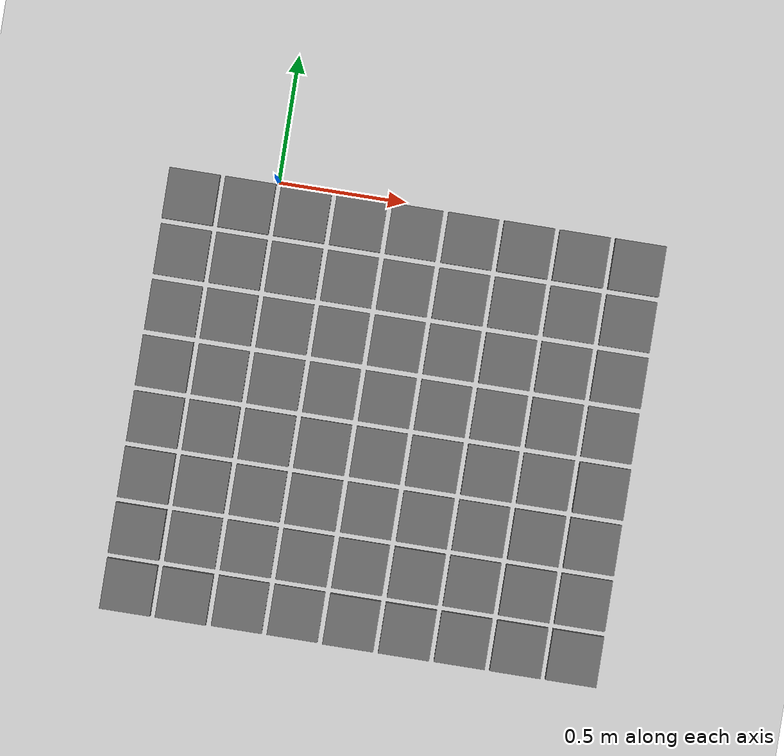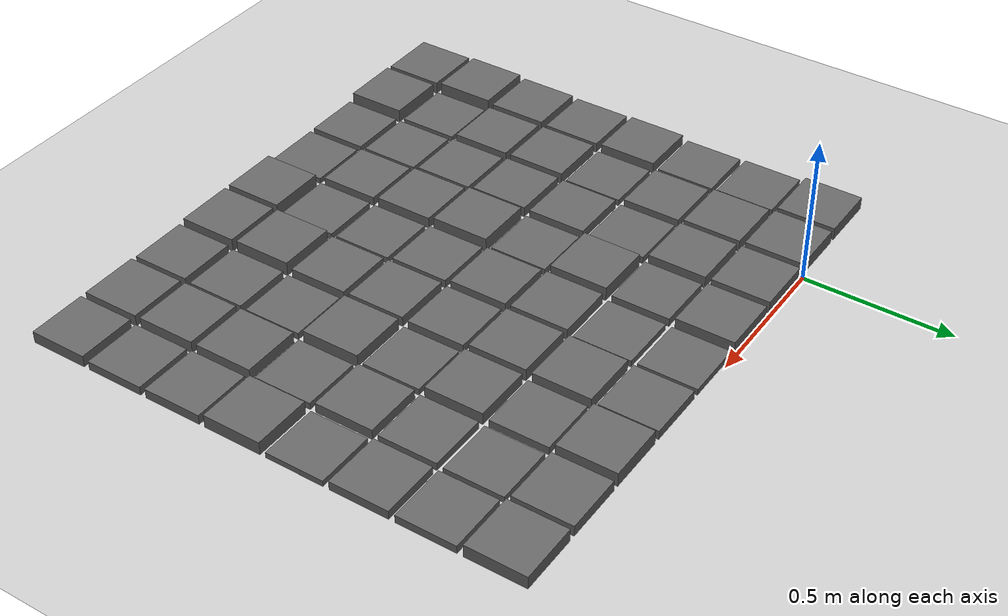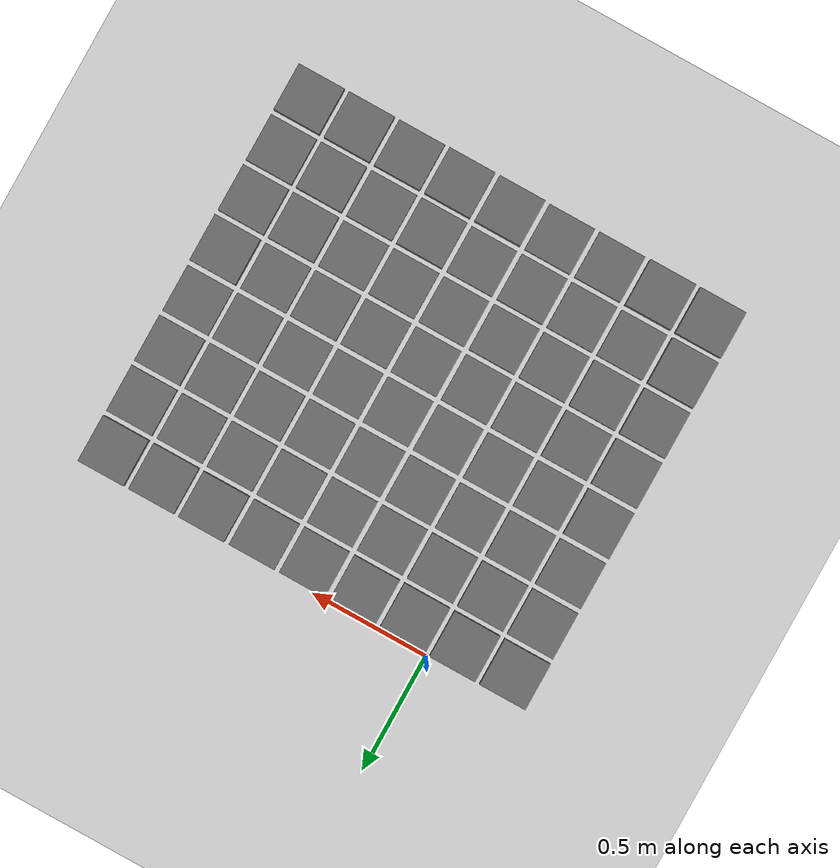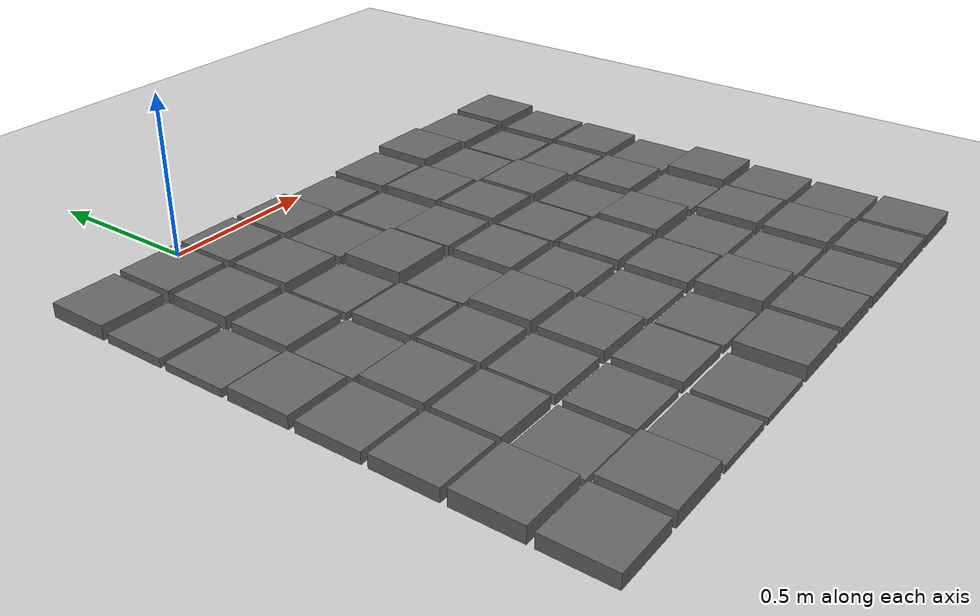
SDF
<sdf version="1.7">
 <world name="default">
  <model name="ground_plane">
   <static>1</static>
   <link name="link">
    <collision name="collision">
     <geometry><plane><normal>0 0 1</normal><size>100 100</size></plane></geometry>
     <surface>
      <contact><collide_bitmask>65535</collide_bitmask></contact>
      <friction><ode><mu>100</mu><mu2>50</mu2></ode></friction>
     </surface>
    </collision>
    <visual name="visual">
     <cast_shadows>0</cast_shadows>
     <geometry><plane><normal>0 0 1</normal><size>100 100</size></plane></geometry>
     <material>
      <script><uri>file://media/materials/scripts/gazebo.material</uri><name>Gazebo/Grey</name></script>
     </material>
    </visual>
   </link>
  </model>
  <model name="terrain_6_0">
   <static>1</static>
   <link name="link">
    <collision name="collision">
     <geometry><box><size>0.2 0.2 0.043116</size></box></geometry>
     <surface><friction><ode><mu>100</mu><mu2>100</mu2></ode></friction></surface>
    </collision>
    <visual name="visual">
     <geometry><box><size>0.2 0.2 0.043116</size></box></geometry>
     <material><ambient>0.4 0.4 0.4 1</ambient></material>
    </visual>
   </link>
   <pose>-0.33 -1.65 0.021558 0 -0 0</pose>
  </model>
  <model name="terrain_6_1">
   <static>1</static>
   <link name="link">
    <collision name="collision">
     <geometry><box><size>0.2 0.2 0.049103</size></box></geometry>
     <surface><friction><ode><mu>100</mu><mu2>100</mu2></ode></friction></surface>
    </collision>
    <visual name="visual">
     <geometry><box><size>0.2 0.2 0.049103</size></box></geometry>
     <material><ambient>0.4 0.4 0.4 1</ambient></material>
    </visual>
   </link>
   <pose>-0.33 -1.43 0.024552 0 -0 0</pose>
  </model>
  <model name="terrain_6_2">
   <static>1</static>
   <link name="link">
    <collision name="collision">
     <geometry><box><size>0.2 0.2 0.040227</size></box></geometry>
     <surface><friction><ode><mu>100</mu><mu2>100</mu2></ode></friction></surface>
    </collision>
    <visual name="visual">
     <geometry><box><size>0.2 0.2 0.040227</size></box></geometry>
     <material><ambient>0.4 0.4 0.4 1</ambient></material>
    </visual>
   </link>
   <pose>-0.33 -1.21 0.020113 0 -0 0</pose>
  </model>
  <model name="terrain_6_3">
   <static>1</static>
   <link name="link">
    <collision name="collision">
     <geometry><box><size>0.2 0.2 0.035061</size></box></geometry>
     <surface><friction><ode><mu>100</mu><mu2>100</mu2></ode></friction></surface>
    </collision>
    <visual name="visual">
     <geometry><box><size>0.2 0.2 0.035061</size></box></geometry>
     <material><ambient>0.4 0.4 0.4 1</ambient></material>
    </visual>
   </link>
   <pose>-0.33 -0.99 0.01753 0 -0 0</pose>
  </model>
  <model name="terrain_6_4">
   <static>1</static>
   <link name="link">
    <collision name="collision">
     <geometry><box><size>0.2 0.2 0.039195</size></box></geometry>
     <surface><friction><ode><mu>100</mu><mu2>100</mu2></ode></friction></surface>
    </collision>
    <visual name="visual">
     <geometry><box><size>0.2 0.2 0.039195</size></box></geometry>
     <material><ambient>0.4 0.4 0.4 1</ambient></material>
    </visual>
   </link>
   <pose>-0.33 -0.77 0.019598 0 -0 0</pose>
  </model>
  <model name="terrain_6_5">
   <static>1</static>
   <link name="link">
    <collision name="collision">
     <geometry><box><size>0.2 0.2 0.024271</size></box></geometry>
     <surface><friction><ode><mu>100</mu><mu2>100</mu2></ode></friction></surface>
    </collision>
    <visual name="visual">
     <geometry><box><size>0.2 0.2 0.024271</size></box></geometry>
     <material><ambient>0.4 0.4 0.4 1</ambient></material>
    </visual>
   </link>
   <pose>-0.33 -0.55 0.012135 0 -0 0</pose>
  </model>
  <model name="terrain_6_6">
   <static>1</static>
   <link name="link">
    <collision name="collision">
     <geometry><box><size>0.2 0.2 0.027412</size></box></geometry>
     <surface><friction><ode><mu>100</mu><mu2>100</mu2></ode></friction></surface>
    </collision>
    <visual name="visual">
     <geometry><box><size>0.2 0.2 0.027412</size></box></geometry>
     <material><ambient>0.4 0.4 0.4 1</ambient></material>
    </visual>
   </link>
   <pose>-0.33 -0.33 0.013706 0 -0 0</pose>
  </model>
  <model name="terrain_6_7">
   <static>1</static>
   <link name="link">
    <collision name="collision">
     <geometry><box><size>0.2 0.2 0.044048</size></box></geometry>
     <surface><friction><ode><mu>100</mu><mu2>100</mu2></ode></friction></surface>
    </collision>
    <visual name="visual">
     <geometry><box><size>0.2 0.2 0.044048</size></box></geometry>
     <material><ambient>0.4 0.4 0.4 1</ambient></material>
    </visual>
   </link>
   <pose>-0.33 -0.11 0.022024 0 -0 0</pose>
  </model>
  <model name="terrain_7_0">
   <static>1</static>
   <link name="link">
    <collision name="collision">
     <geometry><box><size>0.2 0.2 0.047293</size></box></geometry>
     <surface><friction><ode><mu>100</mu><mu2>100</mu2></ode></friction></surface>
    </collision>
    <visual name="visual">
     <geometry><box><size>0.2 0.2 0.047293</size></box></geometry>
     <material><ambient>0.4 0.4 0.4 1</ambient></material>
    </visual>
   </link>
   <pose>-0.11 -1.65 0.023646 0 -0 0</pose>
  </model>
  <model name="terrain_7_1">
   <static>1</static>
   <link name="link">
    <collision name="collision">
     <geometry><box><size>0.2 0.2 0.021317</size></box></geometry>
     <surface><friction><ode><mu>100</mu><mu2>100</mu2></ode></friction></surface>
    </collision>
    <visual name="visual">
     <geometry><box><size>0.2 0.2 0.021317</size></box></geometry>
     <material><ambient>0.4 0.4 0.4 1</ambient></material>
    </visual>
   </link>
   <pose>-0.11 -1.43 0.010659 0 -0 0</pose>
  </model>
  <model name="terrain_7_2">
   <static>1</static>
   <link name="link">
    <collision name="collision">
     <geometry><box><size>0.2 0.2 0.03865</size></box></geometry>
     <surface><friction><ode><mu>100</mu><mu2>100</mu2></ode></friction></surface>
    </collision>
    <visual name="visual">
     <geometry><box><size>0.2 0.2 0.03865</size></box></geometry>
     <material><ambient>0.4 0.4 0.4 1</ambient></material>
    </visual>
   </link>
   <pose>-0.11 -1.21 0.019325 0 -0 0</pose>
  </model>
  <model name="terrain_7_3">
   <static>1</static>
   <link name="link">
    <collision name="collision">
     <geometry><box><size>0.2 0.2 0.040271</size></box></geometry>
     <surface><friction><ode><mu>100</mu><mu2>100</mu2></ode></friction></surface>
    </collision>
    <visual name="visual">
     <geometry><box><size>0.2 0.2 0.040271</size></box></geometry>
     <material><ambient>0.4 0.4 0.4 1</ambient></material>
    </visual>
   </link>
   <pose>-0.11 -0.99 0.020135 0 -0 0</pose>
  </model>
  <model name="terrain_7_4">
   <static>1</static>
   <link name="link">
    <collision name="collision">
     <geometry><box><size>0.2 0.2 0.022176</size></box></geometry>
     <surface><friction><ode><mu>100</mu><mu2>100</mu2></ode></friction></surface>
    </collision>
    <visual name="visual">
     <geometry><box><size>0.2 0.2 0.022176</size></box></geometry>
     <material><ambient>0.4 0.4 0.4 1</ambient></material>
    </visual>
   </link>
   <pose>-0.11 -0.77 0.011088 0 -0 0</pose>
  </model>
  <model name="terrain_7_5">
   <static>1</static>
   <link name="link">
    <collision name="collision">
     <geometry><box><size>0.2 0.2 0.03272</size></box></geometry>
     <surface><friction><ode><mu>100</mu><mu2>100</mu2></ode></friction></surface>
    </collision>
    <visual name="visual">
     <geometry><box><size>0.2 0.2 0.03272</size></box></geometry>
     <material><ambient>0.4 0.4 0.4 1</ambient></material>
    </visual>
   </link>
   <pose>-0.11 -0.55 0.01636 0 -0 0</pose>
  </model>
  <model name="terrain_7_6">
   <static>1</static>
   <link name="link">
    <collision name="collision">
     <geometry><box><size>0.2 0.2 0.041433</size></box></geometry>
     <surface><friction><ode><mu>100</mu><mu2>100</mu2></ode></friction></surface>
    </collision>
    <visual name="visual">
     <geometry><box><size>0.2 0.2 0.041433</size></box></geometry>
     <material><ambient>0.4 0.4 0.4 1</ambient></material>
    </visual>
   </link>
   <pose>-0.11 -0.33 0.020717 0 -0 0</pose>
  </model>
  <model name="terrain_7_7">
   <static>1</static>
   <link name="link">
    <collision name="collision">
     <geometry><box><size>0.2 0.2 0.045575</size></box></geometry>
     <surface><friction><ode><mu>100</mu><mu2>100</mu2></ode></friction></surface>
    </collision>
    <visual name="visual">
     <geometry><box><size>0.2 0.2 0.045575</size></box></geometry>
     <material><ambient>0.4 0.4 0.4 1</ambient></material>
    </visual>
   </link>
   <pose>-0.11 -0.11 0.022787 0 -0 0</pose>
  </model>
  <model name="terrain_8_0">
   <static>1</static>
   <link name="link">
    <collision name="collision">
     <geometry><box><size>0.2 0.2 0.023037</size></box></geometry>
     <surface><friction><ode><mu>100</mu><mu2>100</mu2></ode></friction></surface>
    </collision>
    <visual name="visual">
     <geometry><box><size>0.2 0.2 0.023037</size></box></geometry>
     <material><ambient>0.4 0.4 0.4 1</ambient></material>
    </visual>
   </link>
   <pose>0.11 -1.65 0.011519 0 -0 0</pose>
  </model>
  <model name="terrain_8_1">
   <static>1</static>
   <link name="link">
    <collision name="collision">
     <geometry><box><size>0.2 0.2 0.023261</size></box></geometry>
     <surface><friction><ode><mu>100</mu><mu2>100</mu2></ode></friction></surface>
    </collision>
    <visual name="visual">
     <geometry><box><size>0.2 0.2 0.023261</size></box></geometry>
     <material><ambient>0.4 0.4 0.4 1</ambient></material>
    </visual>
   </link>
   <pose>0.11 -1.43 0.01163 0 -0 0</pose>
  </model>
  <model name="terrain_8_2">
   <static>1</static>
   <link name="link">
    <collision name="collision">
     <geometry><box><size>0.2 0.2 0.03083</size></box></geometry>
     <surface><friction><ode><mu>100</mu><mu2>100</mu2></ode></friction></surface>
    </collision>
    <visual name="visual">
     <geometry><box><size>0.2 0.2 0.03083</size></box></geometry>
     <material><ambient>0.4 0.4 0.4 1</ambient></material>
    </visual>
   </link>
   <pose>0.11 -1.21 0.015415 0 -0 0</pose>
  </model>
  <model name="terrain_8_3">
   <static>1</static>
   <link name="link">
    <collision name="collision">
     <geometry><box><size>0.2 0.2 0.036582</size></box></geometry>
     <surface><friction><ode><mu>100</mu><mu2>100</mu2></ode></friction></surface>
    </collision>
    <visual name="visual">
     <geometry><box><size>0.2 0.2 0.036582</size></box></geometry>
     <material><ambient>0.4 0.4 0.4 1</ambient></material>
    </visual>
   </link>
   <pose>0.11 -0.99 0.018291 0 -0 0</pose>
  </model>
  <model name="terrain_8_4">
   <static>1</static>
   <link name="link">
    <collision name="collision">
     <geometry><box><size>0.2 0.2 0.0341</size></box></geometry>
     <surface><friction><ode><mu>100</mu><mu2>100</mu2></ode></friction></surface>
    </collision>
    <visual name="visual">
     <geometry><box><size>0.2 0.2 0.0341</size></box></geometry>
     <material><ambient>0.4 0.4 0.4 1</ambient></material>
    </visual>
   </link>
   <pose>0.11 -0.77 0.01705 0 -0 0</pose>
  </model>
  <model name="terrain_8_5">
   <static>1</static>
   <link name="link">
    <collision name="collision">
     <geometry><box><size>0.2 0.2 0.024437</size></box></geometry>
     <surface><friction><ode><mu>100</mu><mu2>100</mu2></ode></friction></surface>
    </collision>
    <visual name="visual">
     <geometry><box><size>0.2 0.2 0.024437</size></box></geometry>
     <material><ambient>0.4 0.4 0.4 1</ambient></material>
    </visual>
   </link>
   <pose>0.11 -0.55 0.012218 0 -0 0</pose>
  </model>
  <model name="terrain_8_6">
   <static>1</static>
   <link name="link">
    <collision name="collision">
     <geometry><box><size>0.2 0.2 0.042535</size></box></geometry>
     <surface><friction><ode><mu>100</mu><mu2>100</mu2></ode></friction></surface>
    </collision>
    <visual name="visual">
     <geometry><box><size>0.2 0.2 0.042535</size></box></geometry>
     <material><ambient>0.4 0.4 0.4 1</ambient></material>
    </visual>
   </link>
   <pose>0.11 -0.33 0.021267 0 -0 0</pose>
  </model>
  <model name="terrain_8_7">
   <static>1</static>
   <link name="link">
    <collision name="collision">
     <geometry><box><size>0.2 0.2 0.043571</size></box></geometry>
     <surface><friction><ode><mu>100</mu><mu2>100</mu2></ode></friction></surface>
    </collision>
    <visual name="visual">
     <geometry><box><size>0.2 0.2 0.043571</size></box></geometry>
     <material><ambient>0.4 0.4 0.4 1</ambient></material>
    </visual>
   </link>
   <pose>0.11 -0.11 0.021786 0 -0 0</pose>
  </model>
  <model name="terrain_9_0">
   <static>1</static>
   <link name="link">
    <collision name="collision">
     <geometry><box><size>0.2 0.2 0.021099</size></box></geometry>
     <surface><friction><ode><mu>100</mu><mu2>100</mu2></ode></friction></surface>
    </collision>
    <visual name="visual">
     <geometry><box><size>0.2 0.2 0.021099</size></box></geometry>
     <material><ambient>0.4 0.4 0.4 1</ambient></material>
    </visual>
   </link>
   <pose>0.33 -1.65 0.010549 0 -0 0</pose>
  </model>
  <model name="terrain_9_1">
   <static>1</static>
   <link name="link">
    <collision name="collision">
     <geometry><box><size>0.2 0.2 0.031857</size></box></geometry>
     <surface><friction><ode><mu>100</mu><mu2>100</mu2></ode></friction></surface>
    </collision>
    <visual name="visual">
     <geometry><box><size>0.2 0.2 0.031857</size></box></geometry>
     <material><ambient>0.4 0.4 0.4 1</ambient></material>
    </visual>
   </link>
   <pose>0.33 -1.43 0.015929 0 -0 0</pose>
  </model>
  <model name="terrain_9_2">
   <static>1</static>
   <link name="link">
    <collision name="collision">
     <geometry><box><size>0.2 0.2 0.039376</size></box></geometry>
     <surface><friction><ode><mu>100</mu><mu2>100</mu2></ode></friction></surface>
    </collision>
    <visual name="visual">
     <geometry><box><size>0.2 0.2 0.039376</size></box></geometry>
     <material><ambient>0.4 0.4 0.4 1</ambient></material>
    </visual>
   </link>
   <pose>0.33 -1.21 0.019688 0 -0 0</pose>
  </model>
  <model name="terrain_9_3">
   <static>1</static>
   <link name="link">
    <collision name="collision">
     <geometry><box><size>0.2 0.2 0.048824</size></box></geometry>
     <surface><friction><ode><mu>100</mu><mu2>100</mu2></ode></friction></surface>
    </collision>
    <visual name="visual">
     <geometry><box><size>0.2 0.2 0.048824</size></box></geometry>
     <material><ambient>0.4 0.4 0.4 1</ambient></material>
    </visual>
   </link>
   <pose>0.33 -0.99 0.024412 0 -0 0</pose>
  </model>
  <model name="terrain_9_4">
   <static>1</static>
   <link name="link">
    <collision name="collision">
     <geometry><box><size>0.2 0.2 0.024885</size></box></geometry>
     <surface><friction><ode><mu>100</mu><mu2>100</mu2></ode></friction></surface>
    </collision>
    <visual name="visual">
     <geometry><box><size>0.2 0.2 0.024885</size></box></geometry>
     <material><ambient>0.4 0.4 0.4 1</ambient></material>
    </visual>
   </link>
   <pose>0.33 -0.77 0.012442 0 -0 0</pose>
  </model>
  <model name="terrain_9_5">
   <static>1</static>
   <link name="link">
    <collision name="collision">
     <geometry><box><size>0.2 0.2 0.04875</size></box></geometry>
     <surface><friction><ode><mu>100</mu><mu2>100</mu2></ode></friction></surface>
    </collision>
    <visual name="visual">
     <geometry><box><size>0.2 0.2 0.04875</size></box></geometry>
     <material><ambient>0.4 0.4 0.4 1</ambient></material>
    </visual>
   </link>
   <pose>0.33 -0.55 0.024375 0 -0 0</pose>
  </model>
  <model name="terrain_9_6">
   <static>1</static>
   <link name="link">
    <collision name="collision">
     <geometry><box><size>0.2 0.2 0.0289</size></box></geometry>
     <surface><friction><ode><mu>100</mu><mu2>100</mu2></ode></friction></surface>
    </collision>
    <visual name="visual">
     <geometry><box><size>0.2 0.2 0.0289</size></box></geometry>
     <material><ambient>0.4 0.4 0.4 1</ambient></material>
    </visual>
   </link>
   <pose>0.33 -0.33 0.01445 0 -0 0</pose>
  </model>
  <model name="terrain_9_7">
   <static>1</static>
   <link name="link">
    <collision name="collision">
     <geometry><box><size>0.2 0.2 0.040567</size></box></geometry>
     <surface><friction><ode><mu>100</mu><mu2>100</mu2></ode></friction></surface>
    </collision>
    <visual name="visual">
     <geometry><box><size>0.2 0.2 0.040567</size></box></geometry>
     <material><ambient>0.4 0.4 0.4 1</ambient></material>
    </visual>
   </link>
   <pose>0.33 -0.11 0.020283 0 -0 0</pose>
  </model>
  <model name="terrain_10_0">
   <static>1</static>
   <link name="link">
    <collision name="collision">
     <geometry><box><size>0.2 0.2 0.046833</size></box></geometry>
     <surface><friction><ode><mu>100</mu><mu2>100</mu2></ode></friction></surface>
    </collision>
    <visual name="visual">
     <geometry><box><size>0.2 0.2 0.046833</size></box></geometry>
     <material><ambient>0.4 0.4 0.4 1</ambient></material>
    </visual>
   </link>
   <pose>0.55 -1.65 0.023416 0 -0 0</pose>
  </model>
  <model name="terrain_10_1">
   <static>1</static>
   <link name="link">
    <collision name="collision">
     <geometry><box><size>0.2 0.2 0.023155</size></box></geometry>
     <surface><friction><ode><mu>100</mu><mu2>100</mu2></ode></friction></surface>
    </collision>
    <visual name="visual">
     <geometry><box><size>0.2 0.2 0.023155</size></box></geometry>
     <material><ambient>0.4 0.4 0.4 1</ambient></material>
    </visual>
   </link>
   <pose>0.55 -1.43 0.011577 0 -0 0</pose>
  </model>
  <model name="terrain_10_2">
   <static>1</static>
   <link name="link">
    <collision name="collision">
     <geometry><box><size>0.2 0.2 0.022671</size></box></geometry>
     <surface><friction><ode><mu>100</mu><mu2>100</mu2></ode></friction></surface>
    </collision>
    <visual name="visual">
     <geometry><box><size>0.2 0.2 0.022671</size></box></geometry>
     <material><ambient>0.4 0.4 0.4 1</ambient></material>
    </visual>
   </link>
   <pose>0.55 -1.21 0.011336 0 -0 0</pose>
  </model>
  <model name="terrain_10_3">
   <static>1</static>
   <link name="link">
    <collision name="collision">
     <geometry><box><size>0.2 0.2 0.029535</size></box></geometry>
     <surface><friction><ode><mu>100</mu><mu2>100</mu2></ode></friction></surface>
    </collision>
    <visual name="visual">
     <geometry><box><size>0.2 0.2 0.029535</size></box></geometry>
     <material><ambient>0.4 0.4 0.4 1</ambient></material>
    </visual>
   </link>
   <pose>0.55 -0.99 0.014768 0 -0 0</pose>
  </model>
  <model name="terrain_10_4">
   <static>1</static>
   <link name="link">
    <collision name="collision">
     <geometry><box><size>0.2 0.2 0.037642</size></box></geometry>
     <surface><friction><ode><mu>100</mu><mu2>100</mu2></ode></friction></surface>
    </collision>
    <visual name="visual">
     <geometry><box><size>0.2 0.2 0.037642</size></box></geometry>
     <material><ambient>0.4 0.4 0.4 1</ambient></material>
    </visual>
   </link>
   <pose>0.55 -0.77 0.018821 0 -0 0</pose>
  </model>
  <model name="terrain_10_5">
   <static>1</static>
   <link name="link">
    <collision name="collision">
     <geometry><box><size>0.2 0.2 0.039474</size></box></geometry>
     <surface><friction><ode><mu>100</mu><mu2>100</mu2></ode></friction></surface>
    </collision>
    <visual name="visual">
     <geometry><box><size>0.2 0.2 0.039474</size></box></geometry>
     <material><ambient>0.4 0.4 0.4 1</ambient></material>
    </visual>
   </link>
   <pose>0.55 -0.55 0.019737 0 -0 0</pose>
  </model>
  <model name="terrain_10_6">
   <static>1</static>
   <link name="link">
    <collision name="collision">
     <geometry><box><size>0.2 0.2 0.022929</size></box></geometry>
     <surface><friction><ode><mu>100</mu><mu2>100</mu2></ode></friction></surface>
    </collision>
    <visual name="visual">
     <geometry><box><size>0.2 0.2 0.022929</size></box></geometry>
     <material><ambient>0.4 0.4 0.4 1</ambient></material>
    </visual>
   </link>
   <pose>0.55 -0.33 0.011464 0 -0 0</pose>
  </model>
  <model name="terrain_10_7">
   <static>1</static>
   <link name="link">
    <collision name="collision">
     <geometry><box><size>0.2 0.2 0.022206</size></box></geometry>
     <surface><friction><ode><mu>100</mu><mu2>100</mu2></ode></friction></surface>
    </collision>
    <visual name="visual">
     <geometry><box><size>0.2 0.2 0.022206</size></box></geometry>
     <material><ambient>0.4 0.4 0.4 1</ambient></material>
    </visual>
   </link>
   <pose>0.55 -0.11 0.011103 0 -0 0</pose>
  </model>
  <model name="terrain_11_0">
   <static>1</static>
   <link name="link">
    <collision name="collision">
     <geometry><box><size>0.2 0.2 0.04654</size></box></geometry>
     <surface><friction><ode><mu>100</mu><mu2>100</mu2></ode></friction></surface>
    </collision>
    <visual name="visual">
     <geometry><box><size>0.2 0.2 0.04654</size></box></geometry>
     <material><ambient>0.4 0.4 0.4 1</ambient></material>
    </visual>
   </link>
   <pose>0.77 -1.65 0.02327 0 -0 0</pose>
  </model>
  <model name="terrain_11_1">
   <static>1</static>
   <link name="link">
    <collision name="collision">
     <geometry><box><size>0.2 0.2 0.049216</size></box></geometry>
     <surface><friction><ode><mu>100</mu><mu2>100</mu2></ode></friction></surface>
    </collision>
    <visual name="visual">
     <geometry><box><size>0.2 0.2 0.049216</size></box></geometry>
     <material><ambient>0.4 0.4 0.4 1</ambient></material>
    </visual>
   </link>
   <pose>0.77 -1.43 0.024608 0 -0 0</pose>
  </model>
  <model name="terrain_11_2">
   <static>1</static>
   <link name="link">
    <collision name="collision">
     <geometry><box><size>0.2 0.2 0.034283</size></box></geometry>
     <surface><friction><ode><mu>100</mu><mu2>100</mu2></ode></friction></surface>
    </collision>
    <visual name="visual">
     <geometry><box><size>0.2 0.2 0.034283</size></box></geometry>
     <material><ambient>0.4 0.4 0.4 1</ambient></material>
    </visual>
   </link>
   <pose>0.77 -1.21 0.017142 0 -0 0</pose>
  </model>
  <model name="terrain_11_3">
   <static>1</static>
   <link name="link">
    <collision name="collision">
     <geometry><box><size>0.2 0.2 0.035477</size></box></geometry>
     <surface><friction><ode><mu>100</mu><mu2>100</mu2></ode></friction></surface>
    </collision>
    <visual name="visual">
     <geometry><box><size>0.2 0.2 0.035477</size></box></geometry>
     <material><ambient>0.4 0.4 0.4 1</ambient></material>
    </visual>
   </link>
   <pose>0.77 -0.99 0.017738 0 -0 0</pose>
  </model>
  <model name="terrain_11_4">
   <static>1</static>
   <link name="link">
    <collision name="collision">
     <geometry><box><size>0.2 0.2 0.030266</size></box></geometry>
     <surface><friction><ode><mu>100</mu><mu2>100</mu2></ode></friction></surface>
    </collision>
    <visual name="visual">
     <geometry><box><size>0.2 0.2 0.030266</size></box></geometry>
     <material><ambient>0.4 0.4 0.4 1</ambient></material>
    </visual>
   </link>
   <pose>0.77 -0.77 0.015133 0 -0 0</pose>
  </model>
  <model name="terrain_11_5">
   <static>1</static>
   <link name="link">
    <collision name="collision">
     <geometry><box><size>0.2 0.2 0.042669</size></box></geometry>
     <surface><friction><ode><mu>100</mu><mu2>100</mu2></ode></friction></surface>
    </collision>
    <visual name="visual">
     <geometry><box><size>0.2 0.2 0.042669</size></box></geometry>
     <material><ambient>0.4 0.4 0.4 1</ambient></material>
    </visual>
   </link>
   <pose>0.77 -0.55 0.021335 0 -0 0</pose>
  </model>
  <model name="terrain_11_6">
   <static>1</static>
   <link name="link">
    <collision name="collision">
     <geometry><box><size>0.2 0.2 0.04042</size></box></geometry>
     <surface><friction><ode><mu>100</mu><mu2>100</mu2></ode></friction></surface>
    </collision>
    <visual name="visual">
     <geometry><box><size>0.2 0.2 0.04042</size></box></geometry>
     <material><ambient>0.4 0.4 0.4 1</ambient></material>
    </visual>
   </link>
   <pose>0.77 -0.33 0.02021 0 -0 0</pose>
  </model>
  <model name="terrain_11_7">
   <static>1</static>
   <link name="link">
    <collision name="collision">
     <geometry><box><size>0.2 0.2 0.031873</size></box></geometry>
     <surface><friction><ode><mu>100</mu><mu2>100</mu2></ode></friction></surface>
    </collision>
    <visual name="visual">
     <geometry><box><size>0.2 0.2 0.031873</size></box></geometry>
     <material><ambient>0.4 0.4 0.4 1</ambient></material>
    </visual>
   </link>
   <pose>0.77 -0.11 0.015936 0 -0 0</pose>
  </model>
  <model name="terrain_12_0">
   <static>1</static>
   <link name="link">
    <collision name="collision">
     <geometry><box><size>0.2 0.2 0.036647</size></box></geometry>
     <surface><friction><ode><mu>100</mu><mu2>100</mu2></ode></friction></surface>
    </collision>
    <visual name="visual">
     <geometry><box><size>0.2 0.2 0.036647</size></box></geometry>
     <material><ambient>0.4 0.4 0.4 1</ambient></material>
    </visual>
   </link>
   <pose>0.99 -1.65 0.018324 0 -0 0</pose>
  </model>
  <model name="terrain_12_1">
   <static>1</static>
   <link name="link">
    <collision name="collision">
     <geometry><box><size>0.2 0.2 0.028963</size></box></geometry>
     <surface><friction><ode><mu>100</mu><mu2>100</mu2></ode></friction></surface>
    </collision>
    <visual name="visual">
     <geometry><box><size>0.2 0.2 0.028963</size></box></geometry>
     <material><ambient>0.4 0.4 0.4 1</ambient></material>
    </visual>
   </link>
   <pose>0.99 -1.43 0.014481 0 -0 0</pose>
  </model>
  <model name="terrain_12_2">
   <static>1</static>
   <link name="link">
    <collision name="collision">
     <geometry><box><size>0.2 0.2 0.024102</size></box></geometry>
     <surface><friction><ode><mu>100</mu><mu2>100</mu2></ode></friction></surface>
    </collision>
    <visual name="visual">
     <geometry><box><size>0.2 0.2 0.024102</size></box></geometry>
     <material><ambient>0.4 0.4 0.4 1</ambient></material>
    </visual>
   </link>
   <pose>0.99 -1.21 0.012051 0 -0 0</pose>
  </model>
  <model name="terrain_12_3">
   <static>1</static>
   <link name="link">
    <collision name="collision">
     <geometry><box><size>0.2 0.2 0.043429</size></box></geometry>
     <surface><friction><ode><mu>100</mu><mu2>100</mu2></ode></friction></surface>
    </collision>
    <visual name="visual">
     <geometry><box><size>0.2 0.2 0.043429</size></box></geometry>
     <material><ambient>0.4 0.4 0.4 1</ambient></material>
    </visual>
   </link>
   <pose>0.99 -0.99 0.021715 0 -0 0</pose>
  </model>
  <model name="terrain_12_4">
   <static>1</static>
   <link name="link">
    <collision name="collision">
     <geometry><box><size>0.2 0.2 0.022577</size></box></geometry>
     <surface><friction><ode><mu>100</mu><mu2>100</mu2></ode></friction></surface>
    </collision>
    <visual name="visual">
     <geometry><box><size>0.2 0.2 0.022577</size></box></geometry>
     <material><ambient>0.4 0.4 0.4 1</ambient></material>
    </visual>
   </link>
   <pose>0.99 -0.77 0.011289 0 -0 0</pose>
  </model>
  <model name="terrain_12_5">
   <static>1</static>
   <link name="link">
    <collision name="collision">
     <geometry><box><size>0.2 0.2 0.041168</size></box></geometry>
     <surface><friction><ode><mu>100</mu><mu2>100</mu2></ode></friction></surface>
    </collision>
    <visual name="visual">
     <geometry><box><size>0.2 0.2 0.041168</size></box></geometry>
     <material><ambient>0.4 0.4 0.4 1</ambient></material>
    </visual>
   </link>
   <pose>0.99 -0.55 0.020584 0 -0 0</pose>
  </model>
  <model name="terrain_12_6">
   <static>1</static>
   <link name="link">
    <collision name="collision">
     <geometry><box><size>0.2 0.2 0.028042</size></box></geometry>
     <surface><friction><ode><mu>100</mu><mu2>100</mu2></ode></friction></surface>
    </collision>
    <visual name="visual">
     <geometry><box><size>0.2 0.2 0.028042</size></box></geometry>
     <material><ambient>0.4 0.4 0.4 1</ambient></material>
    </visual>
   </link>
   <pose>0.99 -0.33 0.014021 0 -0 0</pose>
  </model>
  <model name="terrain_12_7">
   <static>1</static>
   <link name="link">
    <collision name="collision">
     <geometry><box><size>0.2 0.2 0.048758</size></box></geometry>
     <surface><friction><ode><mu>100</mu><mu2>100</mu2></ode></friction></surface>
    </collision>
    <visual name="visual">
     <geometry><box><size>0.2 0.2 0.048758</size></box></geometry>
     <material><ambient>0.4 0.4 0.4 1</ambient></material>
    </visual>
   </link>
   <pose>0.99 -0.11 0.024379 0 -0 0</pose>
  </model>
  <model name="terrain_13_0">
   <static>1</static>
   <link name="link">
    <collision name="collision">
     <geometry><box><size>0.2 0.2 0.041314</size></box></geometry>
     <surface><friction><ode><mu>100</mu><mu2>100</mu2></ode></friction></surface>
    </collision>
    <visual name="visual">
     <geometry><box><size>0.2 0.2 0.041314</size></box></geometry>
     <material><ambient>0.4 0.4 0.4 1</ambient></material>
    </visual>
   </link>
   <pose>1.21 -1.65 0.020657 0 -0 0</pose>
  </model>
  <model name="terrain_13_1">
   <static>1</static>
   <link name="link">
    <collision name="collision">
     <geometry><box><size>0.2 0.2 0.042285</size></box></geometry>
     <surface><friction><ode><mu>100</mu><mu2>100</mu2></ode></friction></surface>
    </collision>
    <visual name="visual">
     <geometry><box><size>0.2 0.2 0.042285</size></box></geometry>
     <material><ambient>0.4 0.4 0.4 1</ambient></material>
    </visual>
   </link>
   <pose>1.21 -1.43 0.021142 0 -0 0</pose>
  </model>
  <model name="terrain_13_2">
   <static>1</static>
   <link name="link">
    <collision name="collision">
     <geometry><box><size>0.2 0.2 0.041937</size></box></geometry>
     <surface><friction><ode><mu>100</mu><mu2>100</mu2></ode></friction></surface>
    </collision>
    <visual name="visual">
     <geometry><box><size>0.2 0.2 0.041937</size></box></geometry>
     <material><ambient>0.4 0.4 0.4 1</ambient></material>
    </visual>
   </link>
   <pose>1.21 -1.21 0.020968 0 -0 0</pose>
  </model>
  <model name="terrain_13_3">
   <static>1</static>
   <link name="link">
    <collision name="collision">
     <geometry><box><size>0.2 0.2 0.023969</size></box></geometry>
     <surface><friction><ode><mu>100</mu><mu2>100</mu2></ode></friction></surface>
    </collision>
    <visual name="visual">
     <geometry><box><size>0.2 0.2 0.023969</size></box></geometry>
     <material><ambient>0.4 0.4 0.4 1</ambient></material>
    </visual>
   </link>
   <pose>1.21 -0.99 0.011985 0 -0 0</pose>
  </model>
  <model name="terrain_13_4">
   <static>1</static>
   <link name="link">
    <collision name="collision">
     <geometry><box><size>0.2 0.2 0.035455</size></box></geometry>
     <surface><friction><ode><mu>100</mu><mu2>100</mu2></ode></friction></surface>
    </collision>
    <visual name="visual">
     <geometry><box><size>0.2 0.2 0.035455</size></box></geometry>
     <material><ambient>0.4 0.4 0.4 1</ambient></material>
    </visual>
   </link>
   <pose>1.21 -0.77 0.017728 0 -0 0</pose>
  </model>
  <model name="terrain_13_5">
   <static>1</static>
   <link name="link">
    <collision name="collision">
     <geometry><box><size>0.2 0.2 0.026613</size></box></geometry>
     <surface><friction><ode><mu>100</mu><mu2>100</mu2></ode></friction></surface>
    </collision>
    <visual name="visual">
     <geometry><box><size>0.2 0.2 0.026613</size></box></geometry>
     <material><ambient>0.4 0.4 0.4 1</ambient></material>
    </visual>
   </link>
   <pose>1.21 -0.55 0.013307 0 -0 0</pose>
  </model>
  <model name="terrain_13_6">
   <static>1</static>
   <link name="link">
    <collision name="collision">
     <geometry><box><size>0.2 0.2 0.021167</size></box></geometry>
     <surface><friction><ode><mu>100</mu><mu2>100</mu2></ode></friction></surface>
    </collision>
    <visual name="visual">
     <geometry><box><size>0.2 0.2 0.021167</size></box></geometry>
     <material><ambient>0.4 0.4 0.4 1</ambient></material>
    </visual>
   </link>
   <pose>1.21 -0.33 0.010584 0 -0 0</pose>
  </model>
  <model name="terrain_13_7">
   <static>1</static>
   <link name="link">
    <collision name="collision">
     <geometry><box><size>0.2 0.2 0.037456</size></box></geometry>
     <surface><friction><ode><mu>100</mu><mu2>100</mu2></ode></friction></surface>
    </collision>
    <visual name="visual">
     <geometry><box><size>0.2 0.2 0.037456</size></box></geometry>
     <material><ambient>0.4 0.4 0.4 1</ambient></material>
    </visual>
   </link>
   <pose>1.21 -0.11 0.018728 0 -0 0</pose>
  </model>
  <model name="terrain_14_0">
   <static>1</static>
   <link name="link">
    <collision name="collision">
     <geometry><box><size>0.2 0.2 0.040439</size></box></geometry>
     <surface><friction><ode><mu>100</mu><mu2>100</mu2></ode></friction></surface>
    </collision>
    <visual name="visual">
     <geometry><box><size>0.2 0.2 0.040439</size></box></geometry>
     <material><ambient>0.4 0.4 0.4 1</ambient></material>
    </visual>
   </link>
   <pose>1.43 -1.65 0.020219 0 -0 0</pose>
  </model>
  <model name="terrain_14_1">
   <static>1</static>
   <link name="link">
    <collision name="collision">
     <geometry><box><size>0.2 0.2 0.030256</size></box></geometry>
     <surface><friction><ode><mu>100</mu><mu2>100</mu2></ode></friction></surface>
    </collision>
    <visual name="visual">
     <geometry><box><size>0.2 0.2 0.030256</size></box></geometry>
     <material><ambient>0.4 0.4 0.4 1</ambient></material>
    </visual>
   </link>
   <pose>1.43 -1.43 0.015128 0 -0 0</pose>
  </model>
  <model name="terrain_14_2">
   <static>1</static>
   <link name="link">
    <collision name="collision">
     <geometry><box><size>0.2 0.2 0.033287</size></box></geometry>
     <surface><friction><ode><mu>100</mu><mu2>100</mu2></ode></friction></surface>
    </collision>
    <visual name="visual">
     <geometry><box><size>0.2 0.2 0.033287</size></box></geometry>
     <material><ambient>0.4 0.4 0.4 1</ambient></material>
    </visual>
   </link>
   <pose>1.43 -1.21 0.016643 0 -0 0</pose>
  </model>
  <model name="terrain_14_3">
   <static>1</static>
   <link name="link">
    <collision name="collision">
     <geometry><box><size>0.2 0.2 0.045742</size></box></geometry>
     <surface><friction><ode><mu>100</mu><mu2>100</mu2></ode></friction></surface>
    </collision>
    <visual name="visual">
     <geometry><box><size>0.2 0.2 0.045742</size></box></geometry>
     <material><ambient>0.4 0.4 0.4 1</ambient></material>
    </visual>
   </link>
   <pose>1.43 -0.99 0.022871 0 -0 0</pose>
  </model>
  <model name="terrain_14_4">
   <static>1</static>
   <link name="link">
    <collision name="collision">
     <geometry><box><size>0.2 0.2 0.020429</size></box></geometry>
     <surface><friction><ode><mu>100</mu><mu2>100</mu2></ode></friction></surface>
    </collision>
    <visual name="visual">
     <geometry><box><size>0.2 0.2 0.020429</size></box></geometry>
     <material><ambient>0.4 0.4 0.4 1</ambient></material>
    </visual>
   </link>
   <pose>1.43 -0.77 0.010215 0 -0 0</pose>
  </model>
  <model name="terrain_14_5">
   <static>1</static>
   <link name="link">
    <collision name="collision">
     <geometry><box><size>0.2 0.2 0.030796</size></box></geometry>
     <surface><friction><ode><mu>100</mu><mu2>100</mu2></ode></friction></surface>
    </collision>
    <visual name="visual">
     <geometry><box><size>0.2 0.2 0.030796</size></box></geometry>
     <material><ambient>0.4 0.4 0.4 1</ambient></material>
    </visual>
   </link>
   <pose>1.43 -0.55 0.015398 0 -0 0</pose>
  </model>
  <model name="terrain_14_6">
   <static>1</static>
   <link name="link">
    <collision name="collision">
     <geometry><box><size>0.2 0.2 0.027876</size></box></geometry>
     <surface><friction><ode><mu>100</mu><mu2>100</mu2></ode></friction></surface>
    </collision>
    <visual name="visual">
     <geometry><box><size>0.2 0.2 0.027876</size></box></geometry>
     <material><ambient>0.4 0.4 0.4 1</ambient></material>
    </visual>
   </link>
   <pose>1.43 -0.33 0.013938 0 -0 0</pose>
  </model>
  <model name="terrain_14_7">
   <static>1</static>
   <link name="link">
    <collision name="collision">
     <geometry><box><size>0.2 0.2 0.044037</size></box></geometry>
     <surface><friction><ode><mu>100</mu><mu2>100</mu2></ode></friction></surface>
    </collision>
    <visual name="visual">
     <geometry><box><size>0.2 0.2 0.044037</size></box></geometry>
     <material><ambient>0.4 0.4 0.4 1</ambient></material>
    </visual>
   </link>
   <pose>1.43 -0.11 0.022019 0 -0 0</pose>
  </model>
 </world>
</sdf>
